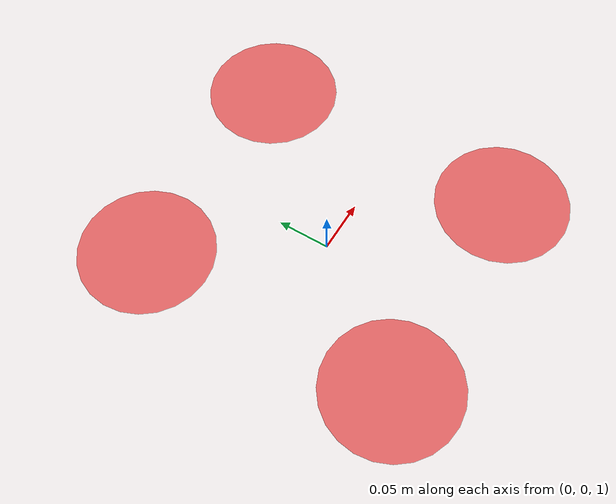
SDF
<?xml version="1.0"?>
<sdf version="1.6">
  <world name="default">
    <include>
      <uri>model://uav</uri>
      <pose>0 0 1.0 0 0 0</pose>
    </include>
    <include>
      <uri>model://ground_plane</uri>
    </include>
    <include>
      <uri>model://sun</uri>
    </include>
    <gravity>0 0 -9.8</gravity>
  </world>
</sdf>

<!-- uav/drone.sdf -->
<sdf version="1.6">
  <model name="uav">

    <plugin name="wind_plugin" filename="libgazebo_ros_force.so">
      <link_name>motor_0_link</link_name>
      <force_frame>world</force_frame>
      <topicName>wind</topicName>
      <force>6.0 0.0 0.0</force>
    </plugin>

    <plugin name="quad_motor" filename="libuav_motor_plugin.so">
      <motor_0_link>motor_0_link</motor_0_link>
      <motor_0_thrust_coeff>1.0</motor_0_thrust_coeff>
      <motor_0_torque_coeff>0.05</motor_0_torque_coeff>
      <motor_0_direction>1</motor_0_direction>

      <motor_1_link>motor_1_link</motor_1_link>
      <motor_1_thrust_coeff>1.0</motor_1_thrust_coeff>
      <motor_1_torque_coeff>0.05</motor_1_torque_coeff>
      <motor_1_direction>-1</motor_1_direction>

      <motor_2_link>motor_2_link</motor_2_link>
      <motor_2_thrust_coeff>1.0</motor_2_thrust_coeff>
      <motor_2_torque_coeff>0.05</motor_2_torque_coeff>
      <motor_2_direction>1</motor_2_direction>

      <motor_3_link>motor_3_link</motor_3_link>
      <motor_3_thrust_coeff>1.0</motor_3_thrust_coeff>
      <motor_3_torque_coeff>0.05</motor_3_torque_coeff>
      <motor_3_direction>-1</motor_3_direction>
    </plugin>

    <link name="body">
      <inertial>
        <mass>0.06</mass>
        <inertia>
	    <ixx>6.29e-4</ixx>
	    <iyy>6.29e-4</iyy>
	    <izz>8.23e-4</izz>
        </inertia>
      </inertial>

      <collision name="collision">
        <geometry>
          <box>
            <size>0.095 0.095 0.0276</size>
          </box>
        </geometry>
      </collision>

      <sensor name="imu" type="imu">
        <always_on>true</always_on>
        <visualize>0</visualize>
        <update_rate>100</update_rate>
        <plugin name="imu_plugin" filename="libgazebo_ros_imu_sensor.so">
          <ros>
            <namespace>drone</namespace>
            <remapping>imu:=imu</remapping>
          </ros>
          <initial_orientation_as_reference>false</initial_orientation_as_reference>
        </plugin>
        <imu>
          <angular_velocity>
            <x><noise type="gaussian"><stddev>0.0</stddev></noise></x>
            <y><noise type="gaussian"><stddev>0.0</stddev></noise></y>
            <z><noise type="gaussian"><stddev>0.0</stddev></noise></z>
          </angular_velocity>
          <linear_acceleration>
            <x><noise type="gaussian"><stddev>0.0</stddev></noise></x>
            <y><noise type="gaussian"><stddev>0.0</stddev></noise></y>
            <z><noise type="gaussian"><stddev>0.0</stddev></noise></z>
          </linear_acceleration>
        </imu>
      </sensor>

      <visual name="body">
        <geometry>
          <mesh>
            <uri>model://uav/uav.stl</uri>
            <scale>0.001 0.001 0.001</scale>
              <material>
  		<ambient>1 1 1 1</ambient>
  		<diffuse>1 1 1 1</diffuse>
  		<specular>0.4 0.4 0.4 1</specular>
	    </material>
          </mesh>
        </geometry>
      </visual>
    </link>

    <link name="motor_0_link">
      <pose>-0.1 0.12 0.038 0 0 0</pose>

      <inertial>
        <mass>0.0002</mass>
        <inertia>
          <ixx>1e-6</ixx>
          <iyy>1e-6</iyy>
          <izz>1e-6</izz>
          </inertia>
      </inertial>
      <visual name="prop0"><!-- rear left -->
        <geometry><cylinder><radius>0.06</radius><length>0</length></cylinder></geometry>
        <material><ambient>0.6 0.2 0.2 1.0</ambient><diffuse>0.9 0.4 0.4 1.0</diffuse></material>
      </visual>
    </link>

    <link name="motor_1_link">
      <pose>-0.1 -0.12 0.038 0 0 0</pose>

      <inertial>
        <mass>0.0002</mass>
        <inertia>
          <ixx>1e-6</ixx>
          <iyy>1e-6</iyy>
          <izz>1e-6</izz>
        </inertia>
      </inertial>
      <visual name="prop1"><!-- rear right -->
        <geometry><cylinder><radius>0.06</radius><length>0</length></cylinder></geometry>
        <material><ambient>0.6 0.2 0.2 1.0</ambient><diffuse>0.9 0.4 0.4 1.0</diffuse></material>
      </visual>
    </link>

    <link name="motor_2_link">
      <pose>0.1 -0.12 0.038 0 0 0</pose>

      <inertial>
        <mass>0.0002</mass>
        <inertia>
          <ixx>1e-6</ixx>
          <iyy>1e-6</iyy>
          <izz>1e-6</izz>
        </inertia>
      </inertial>

      <visual name="prop2"><!-- front right -->
        <geometry><cylinder><radius>0.06</radius><length>0</length></cylinder></geometry>
        <material><ambient>0.6 0.2 0.2 1.0</ambient><diffuse>0.9 0.4 0.4 1.0</diffuse></material>
      </visual>
    </link>

    <link name="motor_3_link">
      <pose>0.1 0.12 0.038 0 0 0</pose>

      <inertial>
        <mass>0.0002</mass>
        <inertia>
          <ixx>1e-6</ixx>
          <iyy>1e-6</iyy>
          <izz>1e-6</izz>
        </inertia>
      </inertial>

      <visual name="prop3"><!-- front right -->
        <geometry><cylinder><radius>0.06</radius><length>0</length></cylinder></geometry>
        <material><ambient>0.6 0.2 0.2 1.0</ambient><diffuse>0.9 0.4 0.4 1.0</diffuse></material>
      </visual>
    </link>

    <joint name="motor_0_joint" type="fixed">
      <parent>body</parent>
      <child>motor_0_link</child>
    </joint>

    <joint name="motor_1_joint" type="fixed">
      <parent>body</parent>
      <child>motor_1_link</child>
    </joint>

    <joint name="motor_2_joint" type="fixed">
      <parent>body</parent>
      <child>motor_2_link</child>
    </joint>

    <joint name="motor_3_joint" type="fixed">
      <parent>body</parent>
      <child>motor_3_link</child>
    </joint>
  </model>
</sdf>
